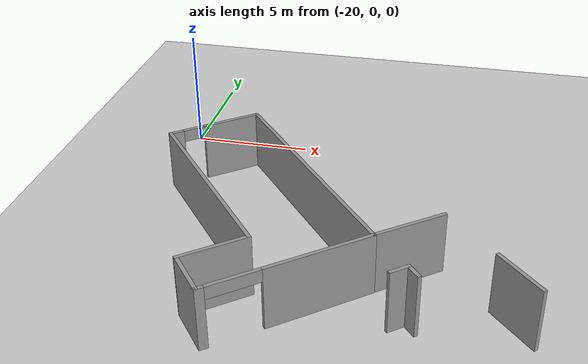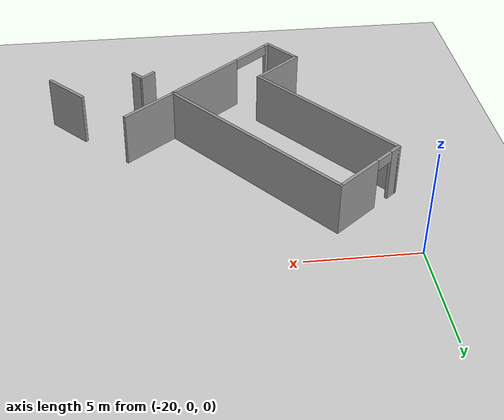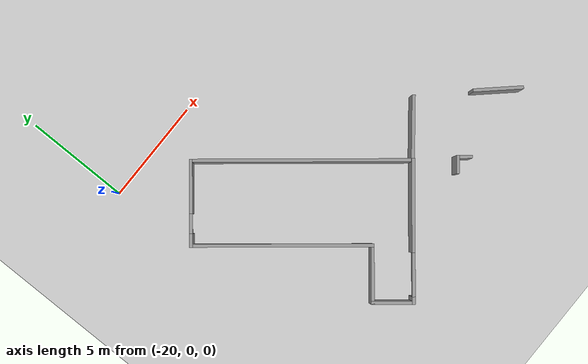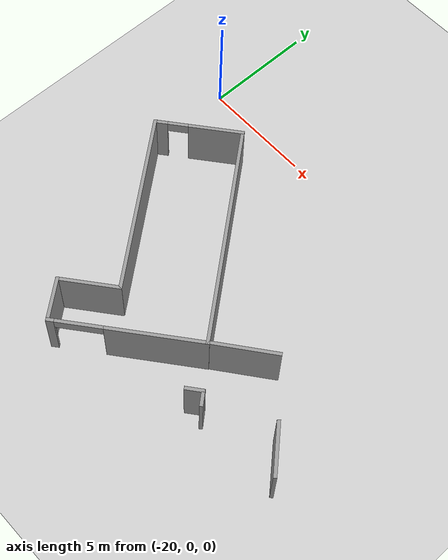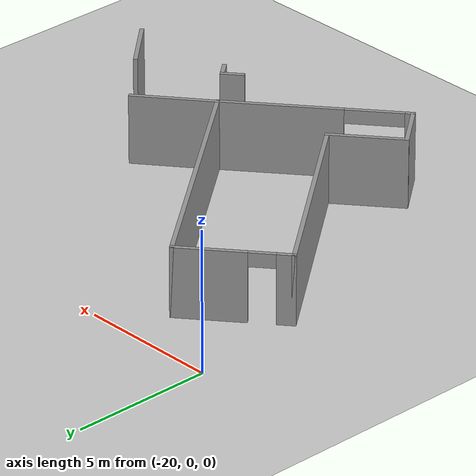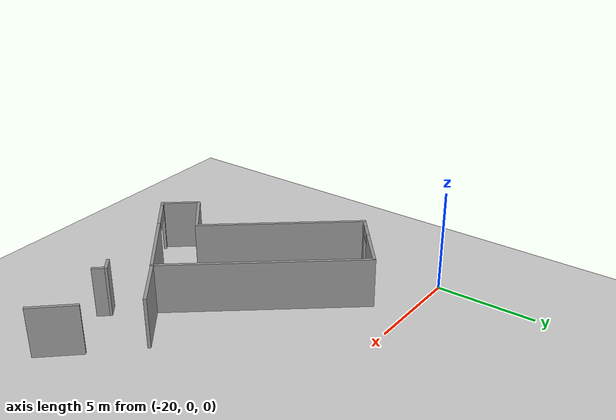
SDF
<sdf version="1.6">
 <world name="default">
  <model name="ground_plane">
   <static>1</static>
   <link name="link">
    <collision name="collision">
     <geometry><plane><normal>0 0 1</normal><size>100 100</size></plane></geometry>
     <surface>
      <contact><collide_bitmask>65535</collide_bitmask></contact>
      <friction><ode><mu>100</mu><mu2>50</mu2></ode></friction>
     </surface>
    </collision>
    <visual name="visual">
     <cast_shadows>0</cast_shadows>
     <geometry><plane><normal>0 0 1</normal><size>100 100</size></plane></geometry>
     <material>
      <script><uri>file://media/materials/scripts/gazebo.material</uri><name>Gazebo/Grey</name></script>
     </material>
    </visual>
   </link>
  </model>
  <model name="wall(2.3)_clone_clone">
   <link name="Wall_0">
    <pose>0.83486 -0.115986 -0.042972 0 -0 0</pose>
    <inertial>
     <mass>1</mass>
     <inertia><ixx>1</ixx><ixy>0</ixy><ixz>0</ixz><iyy>1</iyy><iyz>0</iyz><izz>1</izz></inertia>
    </inertial>
    <visual name="Wall_0_Visual">
     <pose>0 0 1.25 0 -0 0</pose>
     <geometry><box><size>2.3 0.15 2.5</size></box></geometry>
     <material>
      <script><uri>file://media/materials/scripts/gazebo.material</uri><name>Gazebo/Grey</name></script>
      <ambient>1 1 1 1</ambient>
      <shader type="vertex"><normal_map>__default__</normal_map></shader>
      <diffuse>0.7 0.7 0.7 1</diffuse>
      <specular>0.01 0.01 0.01 1</specular>
      <emissive>0 0 0 1</emissive>
     </material>
     <meta><layer>0</layer></meta>
    </visual>
    <collision name="Wall_0_Collision">
     <pose>0 0 1.25 0 -0 0</pose>
     <geometry><box><size>2.25 0.15 2.5</size></box></geometry>
     <surface>
      <friction>
       <ode><mu>1</mu><mu2>1</mu2><fdir1>0 0 0</fdir1><slip1>0</slip1><slip2>0</slip2></ode>
       <torsional>
        <coefficient>1</coefficient>
        <patch_radius>0</patch_radius>
        <surface_radius>0</surface_radius>
        <use_patch_radius>1</use_patch_radius>
        <ode><slip>0</slip></ode>
       </torsional>
      </friction>
      <bounce><restitution_coefficient>0</restitution_coefficient><threshold>1e+06</threshold></bounce>
      <contact>
       <collide_without_contact>0</collide_without_contact>
       <collide_without_contact_bitmask>1</collide_without_contact_bitmask>
       <collide_bitmask>1</collide_bitmask>
       <ode>
        <soft_cfm>0</soft_cfm>
        <soft_erp>0.2</soft_erp>
        <kp>1e+13</kp>
        <kd>1</kd>
        <max_vel>0.01</max_vel>
        <min_depth>0</min_depth>
       </ode>
       <bullet>
        <split_impulse>1</split_impulse>
        <split_impulse_penetration_threshold>-0.01</split_impulse_penetration_threshold>
        <soft_cfm>0</soft_cfm>
        <soft_erp>0.2</soft_erp>
        <kp>1e+13</kp>
        <kd>1</kd>
       </bullet>
      </contact>
     </surface>
    </collision>
   </link>
   <static>1</static>
   <pose>-5.93211 -9.80853 0 0 0 -0.829206</pose>
  </model>
  <model name="1814">
   <pose>-16.0654 -7.65727 0 0 -0 0.68239</pose>
   <link name="Wall_84">
    <collision name="Wall_84_Collision">
     <geometry><box><size>2 0.15 2.5</size></box></geometry>
     <pose>0 0 1.25 0 -0 0</pose>
    </collision>
    <visual name="Wall_84_Visual">
     <pose>0 0 1.25 0 -0 0</pose>
     <geometry><box><size>2 0.15 2.5</size></box></geometry>
     <material>
      <script><uri>file://media/materials/scripts/gazebo.material</uri><name>Gazebo/Grey</name></script>
      <ambient>1 1 1 1</ambient>
     </material>
     <meta><layer>0</layer></meta>
    </visual>
    <pose>-3.22488 -4.105 0 0 -0 1.57067</pose>
   </link>
   <link name="Wall_85">
    <collision name="Wall_85_Collision">
     <geometry><box><size>2.75 0.15 2.5</size></box></geometry>
     <pose>0 0 1.25 0 -0 0</pose>
    </collision>
    <visual name="Wall_85_Visual">
     <pose>0 0 1.25 0 -0 0</pose>
     <geometry><box><size>2.75 0.15 2.5</size></box></geometry>
     <material>
      <script><uri>file://media/materials/scripts/gazebo.material</uri><name>Gazebo/Grey</name></script>
      <ambient>1 1 1 1</ambient>
     </material>
     <meta><layer>0</layer></meta>
    </visual>
    <pose>-1.92476 -3.17998 0 0 -0 0</pose>
   </link>
   <link name="Wall_86">
    <collision name="Wall_86_Collision">
     <geometry><box><size>8.36 0.15 2.5</size></box></geometry>
     <pose>0 0 1.25 0 -0 0</pose>
    </collision>
    <visual name="Wall_86_Visual">
     <pose>0 0 1.25 0 -0 0</pose>
     <geometry><box><size>8.36 0.15 2.5</size></box></geometry>
     <material>
      <script><uri>file://media/materials/scripts/gazebo.material</uri><name>Gazebo/Grey</name></script>
      <ambient>1 1 1 1</ambient>
     </material>
     <meta><layer>0</layer></meta>
    </visual>
    <pose>-0.624761 0.925021 0 0 -0 1.5708</pose>
   </link>
   <link name="Wall_87">
    <pose>1.30012 5.03 0 0 -0 -1.1e-05</pose>
    <visual name="Wall_87_Visual_0">
     <pose>-1.68316 0 1.25 0 -0 0</pose>
     <geometry><box><size>0.633447 0.15 2.5</size></box></geometry>
     <material>
      <script><uri>file://media/materials/scripts/gazebo.material</uri><name>Gazebo/Grey</name></script>
      <ambient>1 1 1 1</ambient>
     </material>
     <meta><layer>0</layer></meta>
    </visual>
    <collision name="Wall_87_Collision_0">
     <geometry><box><size>0.633447 0.15 2.5</size></box></geometry>
     <pose>-1.68316 0 1.25 0 -0 0</pose>
    </collision>
    <visual name="Wall_87_Visual_1">
     <pose>0.766723 0 1.25 0 -0 0</pose>
     <geometry><box><size>2.46632 0.15 2.5</size></box></geometry>
     <material>
      <script><uri>file://media/materials/scripts/gazebo.material</uri><name>Gazebo/Grey</name></script>
      <ambient>1 1 1 1</ambient>
     </material>
     <meta><layer>0</layer></meta>
    </visual>
    <collision name="Wall_87_Collision_1">
     <geometry><box><size>2.46632 0.15 2.5</size></box></geometry>
     <pose>0.766723 0 1.25 0 -0 0</pose>
    </collision>
    <visual name="Wall_87_Visual_2">
     <pose>-0.916436 0 2.25 0 -0 0</pose>
     <geometry><box><size>0.9 0.15 0.5</size></box></geometry>
     <material>
      <script><uri>file://media/materials/scripts/gazebo.material</uri><name>Gazebo/Grey</name></script>
      <ambient>1 1 1 1</ambient>
     </material>
     <meta><layer>0</layer></meta>
    </visual>
    <collision name="Wall_87_Collision_2">
     <geometry><box><size>0.9 0.15 0.5</size></box></geometry>
     <pose>-0.916436 0 2.25 0 -0 0</pose>
    </collision>
   </link>
   <link name="Wall_88">
    <collision name="Wall_88_Collision">
     <geometry><box><size>10.21 0.15 2.5</size></box></geometry>
     <pose>0 0 1.25 0 -0 0</pose>
    </collision>
    <visual name="Wall_88_Visual">
     <pose>0 0 1.25 0 -0 0</pose>
     <geometry><box><size>10.21 0.15 2.5</size></box></geometry>
     <material>
      <script><uri>file://media/materials/scripts/gazebo.material</uri><name>Gazebo/Grey</name></script>
      <ambient>1 1 1 1</ambient>
     </material>
     <meta><layer>0</layer></meta>
    </visual>
    <pose>3.225 -2.1e-05 0 0 -0 -1.5708</pose>
   </link>
   <link name="Wall_89">
    <pose>4e-06 -5.03002 0 0 -0 3.14159</pose>
    <visual name="Wall_89_Visual_0">
     <pose>-1.17013 0 1.25 0 -0 0</pose>
     <geometry><box><size>4.25951 0.15 2.5</size></box></geometry>
     <material>
      <script><uri>file://media/materials/scripts/gazebo.material</uri><name>Gazebo/Grey</name></script>
      <ambient>1 1 1 1</ambient>
     </material>
     <meta><layer>0</layer></meta>
    </visual>
    <collision name="Wall_89_Collision_0">
     <geometry><box><size>4.25951 0.15 2.5</size></box></geometry>
     <pose>-1.17013 0 1.25 0 -0 0</pose>
    </collision>
    <visual name="Wall_89_Visual_1">
     <pose>3.12976 0 1.25 0 -0 0</pose>
     <geometry><box><size>0.340254 0.15 2.5</size></box></geometry>
     <material>
      <script><uri>file://media/materials/scripts/gazebo.material</uri><name>Gazebo/Grey</name></script>
      <ambient>1 1 1 1</ambient>
     </material>
     <meta><layer>0</layer></meta>
    </visual>
    <collision name="Wall_89_Collision_1">
     <geometry><box><size>0.340254 0.15 2.5</size></box></geometry>
     <pose>3.12976 0 1.25 0 -0 0</pose>
    </collision>
    <visual name="Wall_89_Visual_2">
     <pose>1.95963 0 2.25 0 -0 0</pose>
     <geometry><box><size>2 0.15 0.5</size></box></geometry>
     <material>
      <script><uri>file://media/materials/scripts/gazebo.material</uri><name>Gazebo/Grey</name></script>
      <ambient>1 1 1 1</ambient>
     </material>
     <meta><layer>0</layer></meta>
    </visual>
    <collision name="Wall_89_Collision_2">
     <geometry><box><size>2 0.15 0.5</size></box></geometry>
     <pose>1.95963 0 2.25 0 -0 0</pose>
    </collision>
   </link>
   <static>1</static>
  </model>
  <model name="wall(0.83)_0_clone">
   <link name="Wall_0">
    <inertial>
     <mass>1</mass>
     <inertia><ixx>1</ixx><ixy>0</ixy><ixz>0</ixz><iyy>1</iyy><iyz>0</iyz><izz>1</izz></inertia>
    </inertial>
    <visual name="Wall_0_Visual">
     <pose>0 0 1.25 0 -0 0</pose>
     <geometry><box><size>0.83 0.15 2.5</size></box></geometry>
     <material>
      <script><uri>file://media/materials/scripts/gazebo.material</uri><name>Gazebo/Grey</name></script>
      <ambient>1 1 1 1</ambient>
      <shader type="vertex"><normal_map>__default__</normal_map></shader>
      <diffuse>0.7 0.7 0.7 1</diffuse>
      <specular>0.01 0.01 0.01 1</specular>
      <emissive>0 0 0 1</emissive>
     </material>
     <meta><layer>0</layer></meta>
    </visual>
    <collision name="Wall_0_Collision">
     <pose>0 0 1.25 0 -0 0</pose>
     <geometry><box><size>0.83 0.15 2.5</size></box></geometry>
     <surface>
      <friction>
       <ode><mu>1</mu><mu2>1</mu2><fdir1>0 0 0</fdir1><slip1>0</slip1><slip2>0</slip2></ode>
       <torsional>
        <coefficient>1</coefficient>
        <patch_radius>0</patch_radius>
        <surface_radius>0</surface_radius>
        <use_patch_radius>1</use_patch_radius>
        <ode><slip>0</slip></ode>
       </torsional>
      </friction>
      <bounce><restitution_coefficient>0</restitution_coefficient><threshold>1e+06</threshold></bounce>
      <contact>
       <collide_without_contact>0</collide_without_contact>
       <collide_without_contact_bitmask>1</collide_without_contact_bitmask>
       <collide_bitmask>1</collide_bitmask>
       <ode>
        <soft_cfm>0</soft_cfm>
        <soft_erp>0.2</soft_erp>
        <kp>1e+13</kp>
        <kd>1</kd>
        <max_vel>0.01</max_vel>
        <min_depth>0</min_depth>
       </ode>
       <bullet>
        <split_impulse>1</split_impulse>
        <split_impulse_penetration_threshold>-0.01</split_impulse_penetration_threshold>
        <soft_cfm>0</soft_cfm>
        <soft_erp>0.2</soft_erp>
        <kp>1e+13</kp>
        <kd>1</kd>
       </bullet>
      </contact>
     </surface>
    </collision>
   </link>
   <static>1</static>
   <pose>-9.27906 -11.23 0 0 -0 0.678455</pose>
  </model>
  <model name="wall(0.6)_0">
   <link name="Wall_0">
    <inertial>
     <mass>1</mass>
     <inertia><ixx>1</ixx><ixy>0</ixy><ixz>0</ixz><iyy>1</iyy><iyz>0</iyz><izz>1</izz></inertia>
    </inertial>
    <visual name="Wall_0_Visual">
     <pose>0 0 1.25 0 -0 0</pose>
     <geometry><box><size>0.6 0.15 2.5</size></box></geometry>
     <material>
      <script><uri>file://media/materials/scripts/gazebo.material</uri><name>Gazebo/Grey</name></script>
      <ambient>1 1 1 1</ambient>
      <shader type="vertex"><normal_map>__default__</normal_map></shader>
      <diffuse>0.7 0.7 0.7 1</diffuse>
      <specular>0.01 0.01 0.01 1</specular>
      <emissive>0 0 0 1</emissive>
     </material>
     <meta><layer>0</layer></meta>
    </visual>
    <collision name="Wall_0_Collision">
     <pose>0 0 1.25 0 -0 0</pose>
     <geometry><box><size>0.6 0.15 2.5</size></box></geometry>
     <surface>
      <friction>
       <ode><mu>1</mu><mu2>1</mu2><fdir1>0 0 0</fdir1><slip1>0</slip1><slip2>0</slip2></ode>
       <torsional>
        <coefficient>1</coefficient>
        <patch_radius>0</patch_radius>
        <surface_radius>0</surface_radius>
        <use_patch_radius>1</use_patch_radius>
        <ode><slip>0</slip></ode>
       </torsional>
      </friction>
      <bounce><restitution_coefficient>0</restitution_coefficient><threshold>1e+06</threshold></bounce>
      <contact>
       <collide_without_contact>0</collide_without_contact>
       <collide_without_contact_bitmask>1</collide_without_contact_bitmask>
       <collide_bitmask>1</collide_bitmask>
       <ode>
        <soft_cfm>0</soft_cfm>
        <soft_erp>0.2</soft_erp>
        <kp>1e+13</kp>
        <kd>1</kd>
        <max_vel>0.01</max_vel>
        <min_depth>0</min_depth>
       </ode>
       <bullet>
        <split_impulse>1</split_impulse>
        <split_impulse_penetration_threshold>-0.01</split_impulse_penetration_threshold>
        <soft_cfm>0</soft_cfm>
        <soft_erp>0.2</soft_erp>
        <kp>1e+13</kp>
        <kd>1</kd>
       </bullet>
      </contact>
     </surface>
    </collision>
   </link>
   <static>1</static>
   <pose>-8.78678 -11.2831 0 0 0 -0.868323</pose>
  </model>
  <model name="wall(3)_0_clone">
   <link name="Wall_106">
    <pose>-2.9353 0.017523 0 0 0 -0.005631</pose>
    <inertial>
     <mass>1</mass>
     <inertia><ixx>1</ixx><ixy>0</ixy><ixz>0</ixz><iyy>1</iyy><iyz>0</iyz><izz>1</izz></inertia>
    </inertial>
    <visual name="Wall_106_Visual">
     <pose>0 0 1.25 0 -0 0</pose>
     <geometry><box><size>3 0.15 2.5</size></box></geometry>
     <material>
      <script><uri>file://media/materials/scripts/gazebo.material</uri><name>Gazebo/Grey</name></script>
      <ambient>1 1 1 1</ambient>
      <shader type="vertex"><normal_map>__default__</normal_map></shader>
      <diffuse>0.7 0.7 0.7 1</diffuse>
      <specular>0.01 0.01 0.01 1</specular>
      <emissive>0 0 0 1</emissive>
     </material>
     <meta><layer>0</layer></meta>
    </visual>
    <collision name="Wall_106_Collision">
     <pose>0 0 1.25 0 -0 0</pose>
     <geometry><box><size>3 0.15 2.5</size></box></geometry>
     <surface>
      <friction>
       <ode><mu>1</mu><mu2>1</mu2><fdir1>0 0 0</fdir1><slip1>0</slip1><slip2>0</slip2></ode>
       <torsional>
        <coefficient>1</coefficient>
        <patch_radius>0</patch_radius>
        <surface_radius>0</surface_radius>
        <use_patch_radius>1</use_patch_radius>
        <ode><slip>0</slip></ode>
       </torsional>
      </friction>
      <bounce><restitution_coefficient>0</restitution_coefficient><threshold>1e+06</threshold></bounce>
      <contact>
       <collide_without_contact>0</collide_without_contact>
       <collide_without_contact_bitmask>1</collide_without_contact_bitmask>
       <collide_bitmask>1</collide_bitmask>
       <ode>
        <soft_cfm>0</soft_cfm>
        <soft_erp>0.2</soft_erp>
        <kp>1e+13</kp>
        <kd>1</kd>
        <max_vel>0.01</max_vel>
        <min_depth>0</min_depth>
       </ode>
       <bullet>
        <split_impulse>1</split_impulse>
        <split_impulse_penetration_threshold>-0.01</split_impulse_penetration_threshold>
        <soft_cfm>0</soft_cfm>
        <soft_erp>0.2</soft_erp>
        <kp>1e+13</kp>
        <kd>1</kd>
       </bullet>
      </contact>
     </surface>
    </collision>
   </link>
   <static>1</static>
   <pose>-6.95078 -6.80655 0 0 -0 0.671072</pose>
  </model>
 </world>
</sdf>
